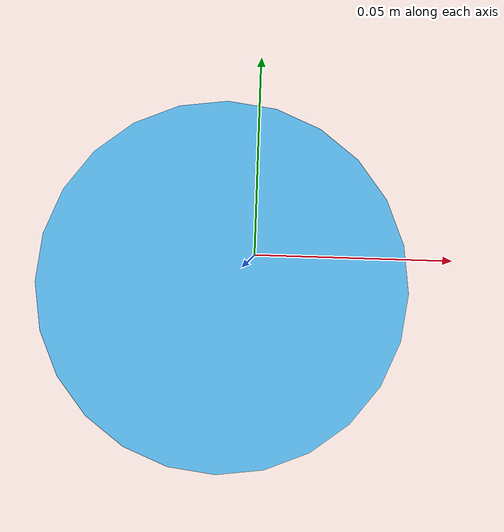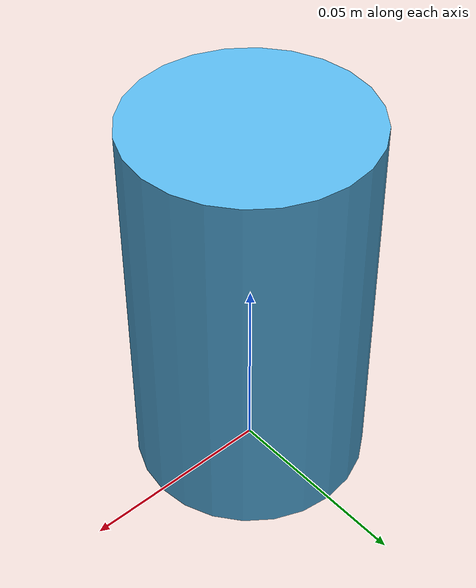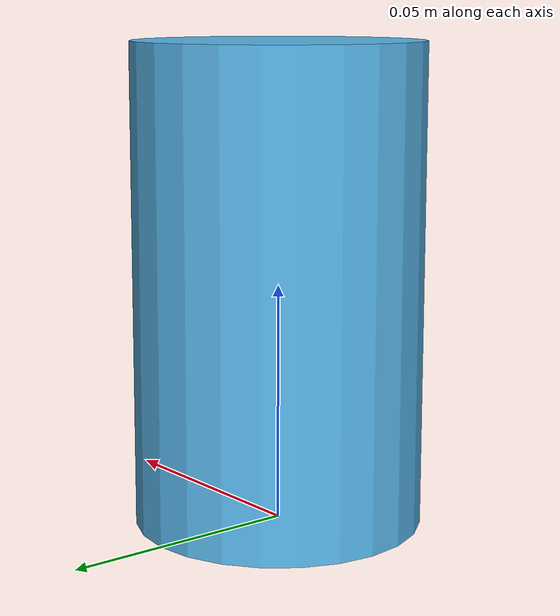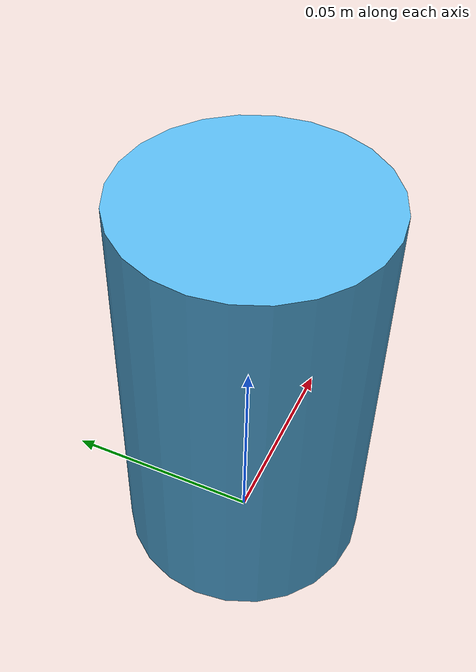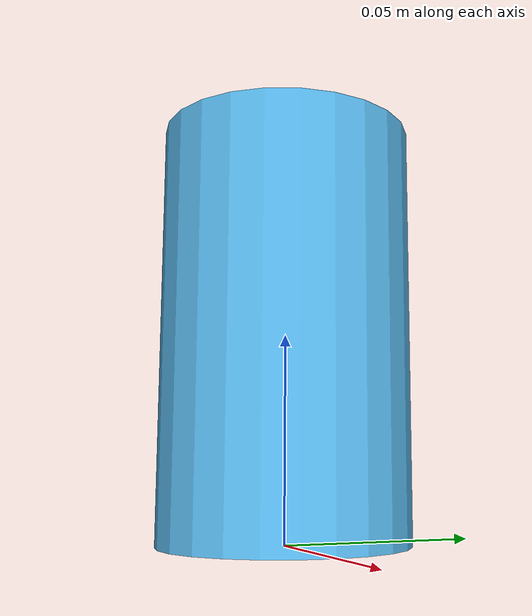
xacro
<?xml version="1.0"?>
<robot xmlns:xacro="http://www.ros.org/wiki/xacro" name="motor1_ak30">
  <link name="world"/>
  <link name="motor1_joint">
    <visual>
      <geometry>
        <cylinder radius="0.03" length="0.10"/>
      </geometry>
      <origin xyz="0 0 0.05" rpy="0 0 0"/>
    </visual>
  </link>
  <joint name="motor1_joint" type="revolute">
    <parent link="world"/>
    <child link="motor1_joint"/>
    <axis xyz="0 0 1"/>
    <limit lower="-12.56" upper="12.56" effort="15.0" velocity="40.0"/>
  </joint>

  <ros2_control name="motor1_ak30_system" type="system">
    <hardware>
      <plugin>mech_bringup/Ak30System</plugin>
      <param name="device_path">/dev/ttyACM0</param>
      <param name="logical_bus">1</param>
      <param name="drive_id">104</param>
      <param name="kp">1.0</param>
      <param name="kd">1.0</param>
      <param name="position_min_rad">-12.0</param>
      <param name="position_max_rad">6.0</param>
      <param name="position_max_error_rad">0.5</param>
      <param name="control_period_ns">2000000</param>
      <param name="command_ttl_ns">4000000</param>
      <param name="command_hard_ttl_ns">6000000</param>
      <param name="feedback_period_ns">20000000</param>
      <param name="feedback_ttl_ns">60000000</param>
      <param name="zero_offset_rad">5.760604931781636</param>
      <param name="position_is_output_shaft">true</param>
      <param name="feedback_telemetry_log">false</param>
    </hardware>
    <joint name="motor1_joint">
      <command_interface name="position"/>
      <command_interface name="command_generation"/>
      <state_interface name="position"/>
      <state_interface name="velocity"/>
      <state_interface name="effort"/>
    </joint>
  </ros2_control>
</robot>
